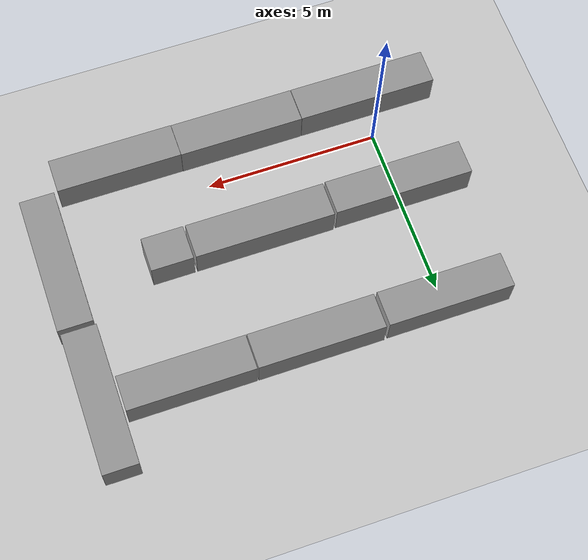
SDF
<sdf version="1.7">
 <world name="default">
  <light name="sun" type="directional">
   <pose>0 0 10 0 -0 0</pose>
   <diffuse>0.8 0.8 0.8 1</diffuse>
   <specular>0.2 0.2 0.2 1</specular>
   <attenuation>
    <range>1000</range>
    <constant>0.9</constant>
    <linear>0.01</linear>
    <quadratic>0.001</quadratic>
   </attenuation>
   <direction>-0.5 0.1 -0.9</direction>
   <spot><inner_angle>0</inner_angle><outer_angle>0</outer_angle><falloff>0</falloff></spot>
  </light>
  <model name="ground_plane">
   <static>1</static>
   <link name="link">
    <collision name="collision">
     <geometry><plane><normal>0 0 1</normal><size>100 100</size></plane></geometry>
     <surface><friction><ode><mu>100</mu><mu2>50</mu2></ode></friction></surface>
    </collision>
    <visual name="visual">
     <cast_shadows>0</cast_shadows>
     <geometry><plane><normal>0 0 1</normal><size>100 100</size></plane></geometry>
     <material>
      <script><uri>file://media/materials/scripts/gazebo.material</uri><name>Gazebo/Grey</name></script>
     </material>
    </visual>
   </link>
  </model>
  <gravity>0 0 -9.8</gravity>
  <magnetic_field>6e-06 2.3e-05 -4.2e-05</magnetic_field>
  <atmosphere type="adiabatic"/>
  <physics type="ode">
   <max_step_size>0.001</max_step_size>
   <real_time_factor>1</real_time_factor>
   <real_time_update_rate>1000</real_time_update_rate>
  </physics>
  <scene><ambient>0.4 0.4 0.4 1</ambient><background>0.7 0.7 0.7 1</background><shadows>1</shadows></scene>
  <spherical_coordinates>
   <surface_model>EARTH_WGS84</surface_model>
   <latitude_deg>0</latitude_deg>
   <longitude_deg>0</longitude_deg>
   <elevation>0</elevation>
   <heading_deg>0</heading_deg>
  </spherical_coordinates>
  <model name="unit_box">
   <pose>-0.059085 -1.2305 0.499229 0 -0.000383 -1e-06</pose>
   <link name="link">
    <inertial>
     <mass>1</mass>
     <inertia>
      <ixx>0.166667</ixx>
      <ixy>0</ixy>
      <ixz>0</ixz>
      <iyy>0.166667</iyy>
      <iyz>0</iyz>
      <izz>0.166667</izz>
     </inertia>
    </inertial>
    <collision name="collision"><geometry><box><size>4.02618 1 1</size></box></geometry></collision>
    <visual name="visual">
     <geometry><box><size>4.02618 1 1</size></box></geometry>
     <material>
      <script><name>Gazebo/Grey</name><uri>file://media/materials/scripts/gazebo.material</uri></script>
     </material>
    </visual>
   </link>
  </model>
  <model name="unit_box_clone">
   <pose>3.76613 -1.22818 0.499995 -6e-06 -1e-06 -2.3e-05</pose>
   <link name="link">
    <inertial>
     <mass>1</mass>
     <inertia>
      <ixx>0.166667</ixx>
      <ixy>0</ixy>
      <ixz>0</ixz>
      <iyy>0.166667</iyy>
      <iyz>0</iyz>
      <izz>0.166667</izz>
     </inertia>
    </inertial>
    <collision name="collision"><geometry><box><size>3.60546 1 1</size></box></geometry></collision>
    <visual name="visual">
     <geometry><box><size>3.60546 1 1</size></box></geometry>
     <material>
      <script><name>Gazebo/Grey</name><uri>file://media/materials/scripts/gazebo.material</uri></script>
     </material>
    </visual>
   </link>
  </model>
  <model name="unit_box_clone_0">
   <pose>7.37436 -1.23645 0.49955 0 -0.00025 -2e-06</pose>
   <link name="link">
    <inertial>
     <mass>1</mass>
     <inertia>
      <ixx>0.166667</ixx>
      <ixy>0</ixy>
      <ixz>0</ixz>
      <iyy>0.166667</iyy>
      <iyz>0</iyz>
      <izz>0.166667</izz>
     </inertia>
    </inertial>
    <collision name="collision"><geometry><box><size>3.60546 1 1</size></box></geometry></collision>
    <visual name="visual">
     <geometry><box><size>3.60546 1 1</size></box></geometry>
     <material>
      <script><name>Gazebo/Grey</name><uri>file://media/materials/scripts/gazebo.material</uri></script>
     </material>
    </visual>
   </link>
  </model>
  <model name="unit_box_clone_1">
   <pose>0.012758 1.88562 0.499229 0 0.000383 1e-06</pose>
   <link name="link">
    <inertial>
     <mass>1</mass>
     <inertia>
      <ixx>0.166667</ixx>
      <ixy>0</ixy>
      <ixz>0</ixz>
      <iyy>0.166667</iyy>
      <iyz>0</iyz>
      <izz>0.166667</izz>
     </inertia>
    </inertial>
    <collision name="collision"><geometry><box><size>4.02618 1 1</size></box></geometry></collision>
    <visual name="visual">
     <geometry><box><size>4.02618 1 1</size></box></geometry>
     <material>
      <script><name>Gazebo/Grey</name><uri>file://media/materials/scripts/gazebo.material</uri></script>
     </material>
    </visual>
   </link>
  </model>
  <model name="unit_box_clone_2">
   <pose>4.11076 1.90834 0.499229 0 0.000383 1e-06</pose>
   <link name="link">
    <inertial>
     <mass>1</mass>
     <inertia>
      <ixx>0.166667</ixx>
      <ixy>0</ixy>
      <ixz>0</ixz>
      <iyy>0.166667</iyy>
      <iyz>0</iyz>
      <izz>0.166667</izz>
     </inertia>
    </inertial>
    <collision name="collision"><geometry><box><size>4.02618 1 1</size></box></geometry></collision>
    <visual name="visual">
     <geometry><box><size>4.02618 1 1</size></box></geometry>
     <material>
      <script><name>Gazebo/Grey</name><uri>file://media/materials/scripts/gazebo.material</uri></script>
     </material>
    </visual>
   </link>
  </model>
  <model name="unit_box_clone_3">
   <pose>6.79532 1.90962 0.499995 1e-05 -0 -1.3e-05</pose>
   <link name="link">
    <inertial>
     <mass>1</mass>
     <inertia>
      <ixx>0.166667</ixx>
      <ixy>0</ixy>
      <ixz>0</ixz>
      <iyy>0.166667</iyy>
      <iyz>0</iyz>
      <izz>0.166667</izz>
     </inertia>
    </inertial>
    <collision name="collision"><geometry><box><size>1.20971 1 1</size></box></geometry></collision>
    <visual name="visual">
     <geometry><box><size>1.20971 1 1</size></box></geometry>
     <material>
      <script><name>Gazebo/Grey</name><uri>file://media/materials/scripts/gazebo.material</uri></script>
     </material>
    </visual>
   </link>
  </model>
  <model name="unit_box_clone_4">
   <pose>9.77971 1.27463 0.499229 0 -0.000383 -1.57084</pose>
   <link name="link">
    <inertial>
     <mass>1</mass>
     <inertia>
      <ixx>0.166667</ixx>
      <ixy>0</ixy>
      <ixz>0</ixz>
      <iyy>0.166667</iyy>
      <iyz>0</iyz>
      <izz>0.166667</izz>
     </inertia>
    </inertial>
    <collision name="collision"><geometry><box><size>4.02618 1 1</size></box></geometry></collision>
    <visual name="visual">
     <geometry><box><size>4.02618 1 1</size></box></geometry>
     <material>
      <script><name>Gazebo/Grey</name><uri>file://media/materials/scripts/gazebo.material</uri></script>
     </material>
    </visual>
   </link>
  </model>
  <model name="unit_box_clone_4_clone">
   <pose>9.72776 5.41714 0.499229 0 -0.000383 -1.57081</pose>
   <link name="link">
    <inertial>
     <mass>1</mass>
     <inertia>
      <ixx>0.166667</ixx>
      <ixy>0</ixy>
      <ixz>0</ixz>
      <iyy>0.166667</iyy>
      <iyz>0</iyz>
      <izz>0.166667</izz>
     </inertia>
    </inertial>
    <collision name="collision"><geometry><box><size>4.02618 1 1</size></box></geometry></collision>
    <visual name="visual">
     <geometry><box><size>4.02618 1 1</size></box></geometry>
     <material>
      <script><name>Gazebo/Grey</name><uri>file://media/materials/scripts/gazebo.material</uri></script>
     </material>
    </visual>
   </link>
  </model>
  <model name="unit_box_clone_0_clone">
   <pose>7.36359 5.48275 0.49955 0 -0.00025 -2e-06</pose>
   <link name="link">
    <inertial>
     <mass>1</mass>
     <inertia>
      <ixx>0.166667</ixx>
      <ixy>0</ixy>
      <ixz>0</ixz>
      <iyy>0.166667</iyy>
      <iyz>0</iyz>
      <izz>0.166667</izz>
     </inertia>
    </inertial>
    <collision name="collision"><geometry><box><size>3.60546 1 1</size></box></geometry></collision>
    <visual name="visual">
     <geometry><box><size>3.60546 1 1</size></box></geometry>
     <material>
      <script><name>Gazebo/Grey</name><uri>file://media/materials/scripts/gazebo.material</uri></script>
     </material>
    </visual>
   </link>
  </model>
  <model name="unit_box_clone_0_clone_0">
   <pose>3.7292 5.48275 0.49955 0 0.00025 -3e-06</pose>
   <link name="link">
    <inertial>
     <mass>1</mass>
     <inertia>
      <ixx>0.166667</ixx>
      <ixy>0</ixy>
      <ixz>0</ixz>
      <iyy>0.166667</iyy>
      <iyz>0</iyz>
      <izz>0.166667</izz>
     </inertia>
    </inertial>
    <collision name="collision"><geometry><box><size>3.60546 1 1</size></box></geometry></collision>
    <visual name="visual">
     <geometry><box><size>3.60546 1 1</size></box></geometry>
     <material>
      <script><name>Gazebo/Grey</name><uri>file://media/materials/scripts/gazebo.material</uri></script>
     </material>
    </visual>
   </link>
  </model>
  <model name="unit_box_clone_0_clone_1">
   <pose>0.029266 5.4674 0.49955 0 -0.00025 -4e-06</pose>
   <link name="link">
    <inertial>
     <mass>1</mass>
     <inertia>
      <ixx>0.166667</ixx>
      <ixy>0</ixy>
      <ixz>0</ixz>
      <iyy>0.166667</iyy>
      <iyz>0</iyz>
      <izz>0.166667</izz>
     </inertia>
    </inertial>
    <collision name="collision"><geometry><box><size>3.60546 1 1</size></box></geometry></collision>
    <visual name="visual">
     <geometry><box><size>3.60546 1 1</size></box></geometry>
     <material>
      <script><name>Gazebo/Grey</name><uri>file://media/materials/scripts/gazebo.material</uri></script>
     </material>
    </visual>
   </link>
  </model>
  <light name="user_directional_light_0" type="directional">
   <pose>6.77252 1.85919 1 0 -0 0</pose>
   <diffuse>0.5 0.5 0.5 1</diffuse>
   <specular>0.1 0.1 0.1 1</specular>
   <direction>0.1 0.1 -0.9</direction>
   <attenuation>
    <range>20</range>
    <constant>0.5</constant>
    <linear>0.01</linear>
    <quadratic>0.001</quadratic>
   </attenuation>
   <spot><inner_angle>0</inner_angle><outer_angle>0</outer_angle><falloff>0</falloff></spot>
  </light>
  <light name="user_directional_light_1" type="directional">
   <pose>4.99094 1.89273 1 0 -0 0</pose>
   <diffuse>0.5 0.5 0.5 1</diffuse>
   <specular>0.1 0.1 0.1 1</specular>
   <direction>0.1 0.1 -0.9</direction>
   <attenuation>
    <range>20</range>
    <constant>0.5</constant>
    <linear>0.01</linear>
    <quadratic>0.001</quadratic>
   </attenuation>
   <spot><inner_angle>0</inner_angle><outer_angle>0</outer_angle><falloff>0</falloff></spot>
  </light>
  <light name="user_directional_light_2" type="directional">
   <pose>3.46454 1.89808 1 0 -0 0</pose>
   <diffuse>0.5 0.5 0.5 1</diffuse>
   <specular>0.1 0.1 0.1 1</specular>
   <direction>0.1 0.1 -0.9</direction>
   <attenuation>
    <range>20</range>
    <constant>0.5</constant>
    <linear>0.01</linear>
    <quadratic>0.001</quadratic>
   </attenuation>
   <spot><inner_angle>0</inner_angle><outer_angle>0</outer_angle><falloff>0</falloff></spot>
  </light>
  <light name="user_directional_light_3" type="directional">
   <pose>2.08728 1.87641 1 0 -0 0</pose>
   <diffuse>0.5 0.5 0.5 1</diffuse>
   <specular>0.1 0.1 0.1 1</specular>
   <direction>0.1 0.1 -0.9</direction>
   <attenuation>
    <range>20</range>
    <constant>0.5</constant>
    <linear>0.01</linear>
    <quadratic>0.001</quadratic>
   </attenuation>
   <spot><inner_angle>0</inner_angle><outer_angle>0</outer_angle><falloff>0</falloff></spot>
  </light>
  <light name="user_directional_light_4" type="directional">
   <pose>1.41057 1.83827 1 0 -0 0</pose>
   <diffuse>0.5 0.5 0.5 1</diffuse>
   <specular>0.1 0.1 0.1 1</specular>
   <direction>0.1 0.1 -0.9</direction>
   <attenuation>
    <range>20</range>
    <constant>0.5</constant>
    <linear>0.01</linear>
    <quadratic>0.001</quadratic>
   </attenuation>
   <spot><inner_angle>0</inner_angle><outer_angle>0</outer_angle><falloff>0</falloff></spot>
  </light>
  <light name="user_directional_light_5" type="directional">
   <pose>0.208293 1.88013 1 0 -0 0</pose>
   <diffuse>0.5 0.5 0.5 1</diffuse>
   <specular>0.1 0.1 0.1 1</specular>
   <direction>0.1 0.1 -0.9</direction>
   <attenuation>
    <range>20</range>
    <constant>0.5</constant>
    <linear>0.01</linear>
    <quadratic>0.001</quadratic>
   </attenuation>
   <spot><inner_angle>0</inner_angle><outer_angle>0</outer_angle><falloff>0</falloff></spot>
  </light>
  <light name="user_directional_light_6" type="directional">
   <pose>-1.24479 1.87749 1 0 -0 0</pose>
   <diffuse>0.5 0.5 0.5 1</diffuse>
   <specular>0.1 0.1 0.1 1</specular>
   <direction>0.1 0.1 -0.9</direction>
   <attenuation>
    <range>20</range>
    <constant>0.5</constant>
    <linear>0.01</linear>
    <quadratic>0.001</quadratic>
   </attenuation>
   <spot><inner_angle>0</inner_angle><outer_angle>0</outer_angle><falloff>0</falloff></spot>
  </light>
 </world>
</sdf>
